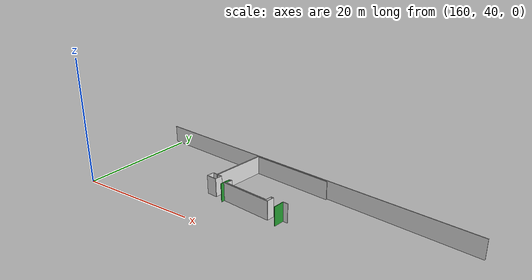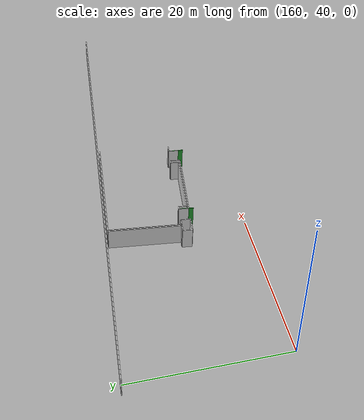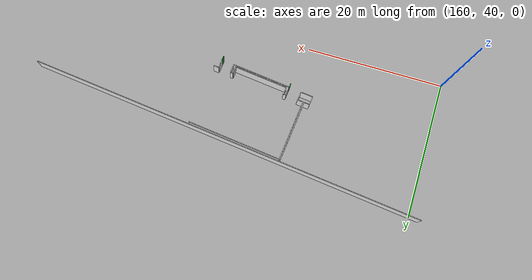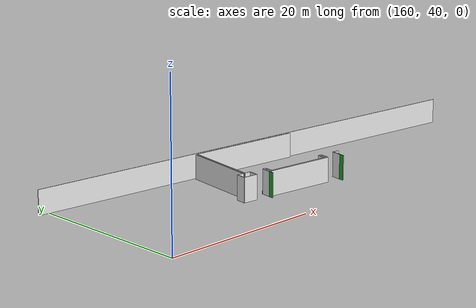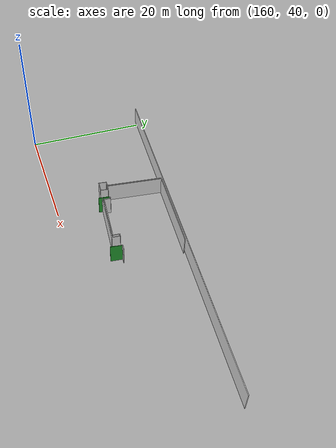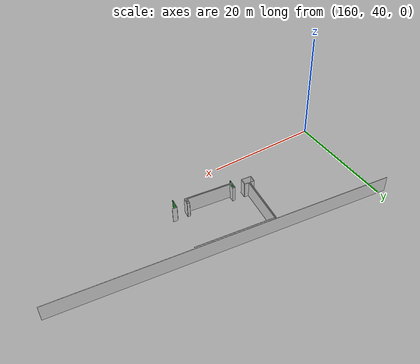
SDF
<sdf version="1.6">
 <world name="default">
  <model name="wall_191.8_46.1_1.5">
   <static>true</static>
   <pose>191.76500000001397 46.06499999994412 1.5 0 0 -1.6875809222415865</pose>
   <link name="link">
    <visual name="visual">
     <geometry><box><size>1.8022763384447233 0.1 3</size></box></geometry>
     <material>
      <script><uri>file://media/materials/scripts/gazebo.material</uri><name>Gazebo/Green</name></script>
     </material>
    </visual>
    <collision name="collision"><geometry><box><size>1.8022763384447233 0.1 3</size></box></geometry></collision>
   </link>
  </model>
  <model name="wall_181.4_47.3_1.5">
   <static>true</static>
   <pose>181.42000000015832 47.30500000016764 1.5 0 0 -1.693088050395822</pose>
   <link name="link">
    <visual name="visual">
     <geometry><box><size>1.8034688796923075 0.1 3</size></box></geometry>
     <material>
      <script><uri>file://media/materials/scripts/gazebo.material</uri><name>Gazebo/Green</name></script>
     </material>
    </visual>
    <collision name="collision"><geometry><box><size>1.8034688796923075 0.1 3</size></box></geometry></collision>
   </link>
  </model>
  <model name="wall_192.3_46.9_1.5">
   <static>true</static>
   <pose>192.26999999998952 46.90999999991618 1.5 0 0 3.0172376589266166</pose>
   <link name="link">
    <visual name="visual">
     <geometry><box><size>0.806225774829855 0.1 3</size></box></geometry>
     <material>
      <script><uri>file://media/materials/scripts/gazebo.material</uri><name>Gazebo/White</name></script>
     </material>
    </visual>
    <collision name="collision"><geometry><box><size>0.806225774829855 0.1 3</size></box></geometry></collision>
   </link>
  </model>
  <model name="wall_189.9_47.2_1.5">
   <static>true</static>
   <pose>189.88000000000466 47.19500000006519 1.5 0 0 3.01723765836245</pose>
   <link name="link">
    <visual name="visual">
     <geometry><box><size>0.4031128874726857 0.1 3</size></box></geometry>
     <material>
      <script><uri>file://media/materials/scripts/gazebo.material</uri><name>Gazebo/White</name></script>
     </material>
    </visual>
    <collision name="collision"><geometry><box><size>0.4031128874726857 0.1 3</size></box></geometry></collision>
   </link>
  </model>
  <model name="wall_189.6_46.7_1.5">
   <static>true</static>
   <pose>189.6149999999907 46.71000000019558 1.5 0 0 -1.6975638618984608</pose>
   <link name="link">
    <visual name="visual">
     <geometry><box><size>1.028250942153329 0.1 3</size></box></geometry>
     <material>
      <script><uri>file://media/materials/scripts/gazebo.material</uri><name>Gazebo/White</name></script>
     </material>
    </visual>
    <collision name="collision"><geometry><box><size>1.028250942153329 0.1 3</size></box></geometry></collision>
   </link>
  </model>
  <model name="wall_185.7_46.7_1.5">
   <static>true</static>
   <pose>185.67999999999302 46.66500000003725 1.5 0 0 3.0220108925195217</pose>
   <link name="link">
    <visual name="visual">
     <geometry><box><size>7.79567187606697 0.1 3</size></box></geometry>
     <material>
      <script><uri>file://media/materials/scripts/gazebo.material</uri><name>Gazebo/White</name></script>
     </material>
    </visual>
    <collision name="collision"><geometry><box><size>7.79567187606697 0.1 3</size></box></geometry></collision>
   </link>
  </model>
  <model name="wall_181.9_47.6_1.5">
   <static>true</static>
   <pose>181.86999999999534 47.639999999897555 1.5 0 0 1.4536875822346544</pose>
   <link name="link">
    <visual name="visual">
     <geometry><box><size>1.0270345661353761 0.1 3</size></box></geometry>
     <material>
      <script><uri>file://media/materials/scripts/gazebo.material</uri><name>Gazebo/White</name></script>
     </material>
    </visual>
    <collision name="collision"><geometry><box><size>1.0270345661353761 0.1 3</size></box></geometry></collision>
   </link>
  </model>
  <model name="wall_181.7_48.2_1.5">
   <static>true</static>
   <pose>181.73000000001048 48.175000000046566 1.5 0 0 3.01723765834454</pose>
   <link name="link">
    <visual name="visual">
     <geometry><box><size>0.4031128874149275 0.1 3</size></box></geometry>
     <material>
      <script><uri>file://media/materials/scripts/gazebo.material</uri><name>Gazebo/White</name></script>
     </material>
    </visual>
    <collision name="collision"><geometry><box><size>0.4031128874149275 0.1 3</size></box></geometry></collision>
   </link>
  </model>
  <model name="wall_179.4_48.5_1.5">
   <static>true</static>
   <pose>179.35000000000582 48.46499999985099 1.5 0 0 3.026716048357006</pose>
   <link name="link">
    <visual name="visual">
     <geometry><box><size>0.7851751396509952 0.1 3</size></box></geometry>
     <material>
      <script><uri>file://media/materials/scripts/gazebo.material</uri><name>Gazebo/White</name></script>
     </material>
    </visual>
    <collision name="collision"><geometry><box><size>0.7851751396509952 0.1 3</size></box></geometry></collision>
   </link>
  </model>
  <model name="wall_179.5_52.9_1.5">
   <static>true</static>
   <pose>179.49500000002445 52.949999999953434 1.5 0 0 1.4508789678012857</pose>
   <link name="link">
    <visual name="visual">
     <geometry><box><size>8.944232779076149 0.1 3</size></box></geometry>
     <material>
      <script><uri>file://media/materials/scripts/gazebo.material</uri><name>Gazebo/White</name></script>
     </material>
    </visual>
    <collision name="collision"><geometry><box><size>8.944232779076149 0.1 3</size></box></geometry></collision>
   </link>
  </model>
  <model name="wall_186.9_56.6_1.5">
   <static>true</static>
   <pose>186.89000000001397 56.56000000005588 1.5 0 0 -0.12040599336592878</pose>
   <link name="link">
    <visual name="visual">
     <geometry><box><size>13.820057886989042 0.1 3</size></box></geometry>
     <material>
      <script><uri>file://media/materials/scripts/gazebo.material</uri><name>Gazebo/White</name></script>
     </material>
    </visual>
    <collision name="collision"><geometry><box><size>13.820057886989042 0.1 3</size></box></geometry></collision>
   </link>
  </model>
  <model name="wall_177.9_48.0_1.5">
   <static>true</static>
   <pose>177.8850000000093 48.02499999990687 1.5 0 0 -1.6941340277173305</pose>
   <link name="link">
    <visual name="visual">
     <geometry><box><size>1.2192620718766056 0.1 3</size></box></geometry>
     <material>
      <script><uri>file://media/materials/scripts/gazebo.material</uri><name>Gazebo/White</name></script>
     </material>
    </visual>
    <collision name="collision"><geometry><box><size>1.2192620718766056 0.1 3</size></box></geometry></collision>
   </link>
  </model>
  <model name="wall_178.7_47.3_1.5">
   <static>true</static>
   <pose>178.70000000001164 47.31499999994412 1.5 0 0 -0.11743468977405322</pose>
   <link name="link">
    <visual name="visual">
     <geometry><box><size>1.7923448329168745 0.1 3</size></box></geometry>
     <material>
      <script><uri>file://media/materials/scripts/gazebo.material</uri><name>Gazebo/White</name></script>
     </material>
    </visual>
    <collision name="collision"><geometry><box><size>1.7923448329168745 0.1 3</size></box></geometry></collision>
   </link>
  </model>
  <model name="wall_179.7_47.8_1.5">
   <static>true</static>
   <pose>179.66500000000815 47.81499999994412 1.5 0 0 1.4474586259198403</pose>
   <link name="link">
    <visual name="visual">
     <geometry><box><size>1.2192620718694447 0.1 3</size></box></geometry>
     <material>
      <script><uri>file://media/materials/scripts/gazebo.material</uri><name>Gazebo/White</name></script>
     </material>
    </visual>
    <collision name="collision"><geometry><box><size>1.2192620718694447 0.1 3</size></box></geometry></collision>
   </link>
  </model>
  <model name="wall_181.5_47.6_1.5">
   <static>true</static>
   <pose>181.4550000000163 47.59500000020489 1.5 0 0 -1.6941340277173305</pose>
   <link name="link">
    <visual name="visual">
     <geometry><box><size>1.2192620718766056 0.1 3</size></box></geometry>
     <material>
      <script><uri>file://media/materials/scripts/gazebo.material</uri><name>Gazebo/White</name></script>
     </material>
    </visual>
    <collision name="collision"><geometry><box><size>1.2192620718766056 0.1 3</size></box></geometry></collision>
   </link>
  </model>
  <model name="wall_185.7_46.5_1.5">
   <static>true</static>
   <pose>185.65499999999884 46.47500000009313 1.5 0 0 -0.11989009554178759</pose>
   <link name="link">
    <visual name="visual">
     <geometry><box><size>8.611817462088831 0.1 3</size></box></geometry>
     <material>
      <script><uri>file://media/materials/scripts/gazebo.material</uri><name>Gazebo/White</name></script>
     </material>
    </visual>
    <collision name="collision"><geometry><box><size>8.611817462088831 0.1 3</size></box></geometry></collision>
   </link>
  </model>
  <model name="wall_190.0_46.6_1.5">
   <static>true</static>
   <pose>190.00500000000466 46.56499999994412 1.5 0 0 1.4474586258724629</pose>
   <link name="link">
    <visual name="visual">
     <geometry><box><size>1.2192620718766056 0.1 3</size></box></geometry>
     <material>
      <script><uri>file://media/materials/scripts/gazebo.material</uri><name>Gazebo/White</name></script>
     </material>
    </visual>
    <collision name="collision"><geometry><box><size>1.2192620718766056 0.1 3</size></box></geometry></collision>
   </link>
  </model>
  <model name="wall_191.8_46.4_1.5">
   <static>true</static>
   <pose>191.7949999999837 46.35499999998137 1.5 0 0 -1.6941340277173305</pose>
   <link name="link">
    <visual name="visual">
     <geometry><box><size>1.2192620718766056 0.1 3</size></box></geometry>
     <material>
      <script><uri>file://media/materials/scripts/gazebo.material</uri><name>Gazebo/White</name></script>
     </material>
    </visual>
    <collision name="collision"><geometry><box><size>1.2192620718766056 0.1 3</size></box></geometry></collision>
   </link>
  </model>
  <model name="wall_178.4_48.6_1.5">
   <static>true</static>
   <pose>178.36000000001513 48.579999999841675 1.5 0 0 3.0172376589266166</pose>
   <link name="link">
    <visual name="visual">
     <geometry><box><size>0.806225774829855 0.1 3</size></box></geometry>
     <material>
      <script><uri>file://media/materials/scripts/gazebo.material</uri><name>Gazebo/White</name></script>
     </material>
    </visual>
    <collision name="collision"><geometry><box><size>0.806225774829855 0.1 3</size></box></geometry></collision>
   </link>
  </model>
  <model name="wall_179.3_53.0_1.5">
   <static>true</static>
   <pose>179.30000000001746 52.96999999997206 1.5 0 0 -1.6918235466011338</pose>
   <link name="link">
    <visual name="visual">
     <geometry><box><size>8.945434590131466 0.1 3</size></box></geometry>
     <material>
      <script><uri>file://media/materials/scripts/gazebo.material</uri><name>Gazebo/White</name></script>
     </material>
    </visual>
    <collision name="collision"><geometry><box><size>8.945434590131466 0.1 3</size></box></geometry></collision>
   </link>
  </model>
  <model name="wall_188.0_56.7_1.5">
   <static>true</static>
   <pose>187.95000000001164 56.71500000008382 1.5 0 0 3.0216988150240605</pose>
   <link name="link">
    <visual name="visual">
     <geometry><box><size>58.943132763758996 0.1 3</size></box></geometry>
     <material>
      <script><uri>file://media/materials/scripts/gazebo.material</uri><name>Gazebo/White</name></script>
     </material>
    </visual>
    <collision name="collision"><geometry><box><size>58.943132763758996 0.1 3</size></box></geometry></collision>
   </link>
  </model>
 </world>
</sdf>
